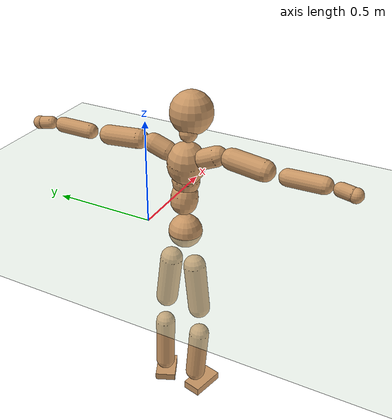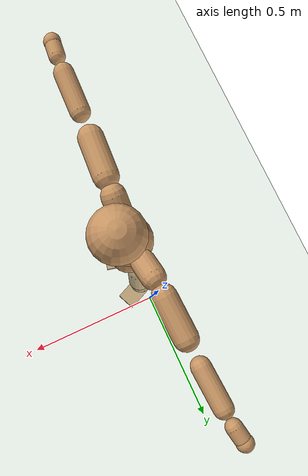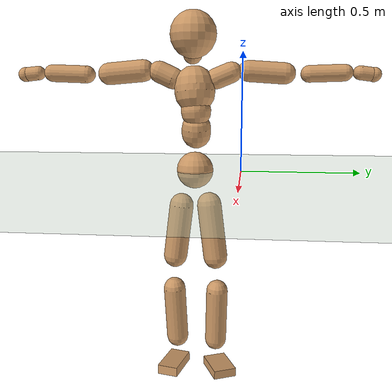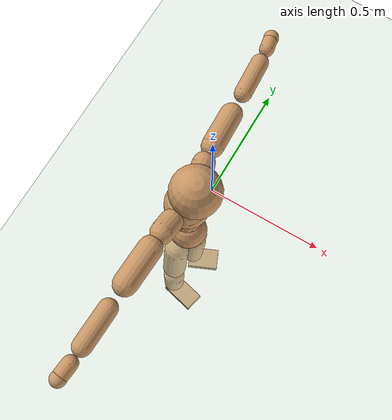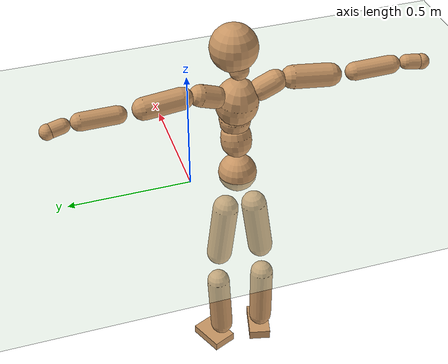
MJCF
<mujoco model="humanoid">
  <compiler coordinate="local" angle="radian"/>
  <default>
    <joint damping="0.0" armature="0.01" stiffness="0.0" limited="true"/>
    <geom conaffinity="1" condim="3" contype="7" margin="0.001" rgba="0.8 0.6 .4 1"/>
  </default>
  <asset>
    <texture type="skybox" builtin="gradient" rgb1=".4 .5 .6" rgb2="0 0 0" width="100" height="100"/>
    <texture builtin="flat" height="1278" mark="cross" markrgb="1 1 1" name="texgeom" random="0.01" rgb1="0.8 0.6 0.4" rgb2="0.8 0.6 0.4" type="cube" width="127"/>
    <texture builtin="checker" height="100" name="texplane" rgb1="0 0 0" rgb2="0.8 0.8 0.8" type="2d" width="100"/>
    <material name="MatPlane" reflectance="0.5" shininess="1" specular="1" texrepeat="60 60" texture="texplane"/>
    <material name="geom" texture="texgeom" texuniform="true"/>
  </asset>
  <worldbody>
    <light cutoff="100" diffuse="1 1 1" dir="-0 0 -1.3" directional="true" exponent="1" pos="0 0 1.3" specular=".1 .1 .1"/>
    <geom conaffinity="1" condim="3" name="floor" pos="0 0 0" rgba="0.8 0.9 0.8 1" size="100 100 .2" type="plane" material="MatPlane"/>
    <body name="Pelvis" pos="0.0015 -0.1999 0.0038">
      <freejoint name="Pelvis"/>
      <geom type="sphere" contype="1" conaffinity="1" density="500" size="0.0791" pos="0.0000 0.0000 0.0000" name="Pelvis"/>
      <body name="L_Hip" pos="-0.0273 0.0502 -0.0755">
        <joint name="L_Hip_x" type="hinge" pos="0 0 0" axis="1 0 0" stiffness="800" damping="80" armature="0.02" range="-180.0000 180.0000"/>
        <joint name="L_Hip_y" type="hinge" pos="0 0 0" axis="0 1 0" stiffness="800" damping="80" armature="0.02" range="-180.0000 180.0000"/>
        <joint name="L_Hip_z" type="hinge" pos="0 0 0" axis="0 0 1" stiffness="800" damping="80" armature="0.02" range="-180.0000 180.0000"/>
        <geom type="capsule" contype="1" conaffinity="1" density="500" fromto="0.0008 0.0099 -0.0807 0.0034 0.0397 -0.3228" size="0.0533" name="L_Hip"/>
        <body name="L_Knee" pos="0.0042 0.0497 -0.4035">
          <joint name="L_Knee_x" type="hinge" pos="0 0 0" axis="1 0 0" stiffness="800" damping="80" armature="0.02" range="-180.0000 180.0000"/>
          <joint name="L_Knee_y" type="hinge" pos="0 0 0" axis="0 1 0" stiffness="800" damping="80" armature="0.02" range="-180.0000 180.0000"/>
          <joint name="L_Knee_z" type="hinge" pos="0 0 0" axis="0 0 1" stiffness="800" damping="80" armature="0.02" range="-180.0000 180.0000"/>
          <geom type="capsule" contype="1" conaffinity="1" density="500" fromto="-0.0065 -0.0021 -0.0830 -0.0260 -0.0085 -0.3319" size="0.0484" name="L_Knee"/>
          <body name="L_Ankle" pos="-0.0325 -0.0106 -0.4149">
            <joint name="L_Ankle_x" type="hinge" pos="0 0 0" axis="1 0 0" stiffness="800" damping="80" armature="0.02" range="-180.0000 180.0000"/>
            <joint name="L_Ankle_y" type="hinge" pos="0 0 0" axis="0 1 0" stiffness="800" damping="80" armature="0.02" range="-180.0000 180.0000"/>
            <joint name="L_Ankle_z" type="hinge" pos="0 0 0" axis="0 0 1" stiffness="800" damping="80" armature="0.02" range="-180.0000 180.0000"/>
            <geom type="box" contype="1" conaffinity="1" density="500" pos="0.0558 0.0244 -0.0291" size="0.0768 0.0515 0.019" quat="0.9789 0.0000 0.0000 0.2045" name="L_Ankle"/>
            <body name="L_Toe" pos="0.1115 0.0487 -0.0581">
              <joint name="L_Toe_x" type="hinge" pos="0 0 0" axis="1 0 0" stiffness="500" damping="50" armature="0.02" range="-180.0000 180.0000"/>
              <joint name="L_Toe_y" type="hinge" pos="0 0 0" axis="0 1 0" stiffness="500" damping="50" armature="0.02" range="-180.0000 180.0000"/>
              <joint name="L_Toe_z" type="hinge" pos="0 0 0" axis="0 0 1" stiffness="500" damping="50" armature="0.02" range="-180.0000 180.0000"/>
              <geom type="box" contype="1" conaffinity="1" density="500" pos="0.0000 0.0000 0.0314" size="0.001 0.0024 0.0011" quat="0.9780 0.0000 0.0000 0.2085" name="L_Toe"/>
            </body>
          </body>
        </body>
      </body>
      <body name="R_Hip" pos="-0.025 -0.0532 -0.0832">
        <joint name="R_Hip_x" type="hinge" pos="0 0 0" axis="1 0 0" stiffness="800" damping="80" armature="0.02" range="-180.0000 180.0000"/>
        <joint name="R_Hip_y" type="hinge" pos="0 0 0" axis="0 1 0" stiffness="800" damping="80" armature="0.02" range="-180.0000 180.0000"/>
        <joint name="R_Hip_z" type="hinge" pos="0 0 0" axis="0 0 1" stiffness="800" damping="80" armature="0.02" range="-180.0000 180.0000"/>
        <geom type="capsule" contype="1" conaffinity="1" density="500" fromto="-0.0014 -0.0100 -0.0789 -0.0056 -0.0398 -0.3156" size="0.0527" name="R_Hip"/>
        <body name="R_Knee" pos="-0.007 -0.0498 -0.3945">
          <joint name="R_Knee_x" type="hinge" pos="0 0 0" axis="1 0 0" stiffness="800" damping="80" armature="0.02" range="-180.0000 180.0000"/>
          <joint name="R_Knee_y" type="hinge" pos="0 0 0" axis="0 1 0" stiffness="800" damping="80" armature="0.02" range="-180.0000 180.0000"/>
          <joint name="R_Knee_z" type="hinge" pos="0 0 0" axis="0 0 1" stiffness="800" damping="80" armature="0.02" range="-180.0000 180.0000"/>
          <geom type="capsule" contype="1" conaffinity="1" density="500" fromto="-0.0059 0.0033 -0.0818 -0.0234 0.0133 -0.3270" size="0.0494" name="R_Knee"/>
          <body name="R_Ankle" pos="-0.0293 0.0166 -0.4088">
            <joint name="R_Ankle_x" type="hinge" pos="0 0 0" axis="1 0 0" stiffness="800" damping="80" armature="0.02" range="-180.0000 180.0000"/>
            <joint name="R_Ankle_y" type="hinge" pos="0 0 0" axis="0 1 0" stiffness="800" damping="80" armature="0.02" range="-180.0000 180.0000"/>
            <joint name="R_Ankle_z" type="hinge" pos="0 0 0" axis="0 0 1" stiffness="800" damping="80" armature="0.02" range="-180.0000 180.0000"/>
            <geom type="box" contype="1" conaffinity="1" density="500" pos="0.0598 -0.0140 -0.0319" size="0.084 0.0464 0.0211" quat="0.9934 0.0000 0.0000 -0.1150" name="R_Ankle"/>
            <body name="R_Toe" pos="0.1197 -0.0281 -0.0638">
              <joint name="R_Toe_x" type="hinge" pos="0 0 0" axis="1 0 0" stiffness="500" damping="50" armature="0.02" range="-180.0000 180.0000"/>
              <joint name="R_Toe_y" type="hinge" pos="0 0 0" axis="0 1 0" stiffness="500" damping="50" armature="0.02" range="-180.0000 180.0000"/>
              <joint name="R_Toe_z" type="hinge" pos="0 0 0" axis="0 0 1" stiffness="500" damping="50" armature="0.02" range="-180.0000 180.0000"/>
              <geom type="box" contype="1" conaffinity="1" density="500" pos="0.0000 0.0000 0.0340" size="0.0009 0.0022 0.0012" quat="0.9944 0.0000 0.0000 -0.1054" name="R_Toe"/>
            </body>
          </body>
        </body>
      </body>
      <body name="Torso" pos="-0.0165 0.0043 0.1082">
        <joint name="Torso_x" type="hinge" pos="0 0 0" axis="1 0 0" stiffness="1000" damping="100" armature="0.02" range="-180.0000 180.0000"/>
        <joint name="Torso_y" type="hinge" pos="0 0 0" axis="0 1 0" stiffness="1000" damping="100" armature="0.02" range="-180.0000 180.0000"/>
        <joint name="Torso_z" type="hinge" pos="0 0 0" axis="0 0 1" stiffness="1000" damping="100" armature="0.02" range="-180.0000 180.0000"/>
        <geom type="capsule" contype="1" conaffinity="1" density="500" fromto="0.0184 0.0016 0.0731 0.0123 0.0010 0.0487" size="0.0625" name="Torso"/>
        <body name="Spine" pos="0.0307 0.0026 0.1218">
          <joint name="Spine_x" type="hinge" pos="0 0 0" axis="1 0 0" stiffness="1000" damping="100" armature="0.02" range="-180.0000 180.0000"/>
          <joint name="Spine_y" type="hinge" pos="0 0 0" axis="0 1 0" stiffness="1000" damping="100" armature="0.02" range="-180.0000 180.0000"/>
          <joint name="Spine_z" type="hinge" pos="0 0 0" axis="0 0 1" stiffness="1000" damping="100" armature="0.02" range="-180.0000 180.0000"/>
          <geom type="capsule" contype="1" conaffinity="1" density="500" fromto="-0.0001 -0.0016 0.0289 -0.0001 -0.0010 0.0192" size="0.0635" name="Spine"/>
          <body name="Chest" pos="-0.0002 -0.0026 0.0481">
            <joint name="Chest_x" type="hinge" pos="0 0 0" axis="1 0 0" stiffness="1000" damping="100" armature="0.02" range="-180.0000 180.0000"/>
            <joint name="Chest_y" type="hinge" pos="0 0 0" axis="0 1 0" stiffness="1000" damping="100" armature="0.02" range="-180.0000 180.0000"/>
            <joint name="Chest_z" type="hinge" pos="0 0 0" axis="0 0 1" stiffness="1000" damping="100" armature="0.02" range="-180.0000 180.0000"/>
            <geom type="capsule" contype="1" conaffinity="1" density="500" fromto="-0.0100 -0.0056 0.0775 -0.0066 -0.0038 0.0517" size="0.0858" name="Chest"/>
            <body name="Neck" pos="-0.017 -0.0144 0.1872">
              <joint name="Neck_x" type="hinge" pos="0 0 0" axis="1 0 0" stiffness="500" damping="50" armature="0.02" range="-180.0000 180.0000"/>
              <joint name="Neck_y" type="hinge" pos="0 0 0" axis="0 1 0" stiffness="500" damping="50" armature="0.02" range="-180.0000 180.0000"/>
              <joint name="Neck_z" type="hinge" pos="0 0 0" axis="0 0 1" stiffness="500" damping="50" armature="0.02" range="-180.0000 180.0000"/>
              <geom type="capsule" contype="1" conaffinity="1" density="500" fromto="0.0101 0.0017 0.0191 0.0406 0.0068 0.0764" size="0.0401" name="Neck"/>
              <body name="Head" pos="0.0507 0.0084 0.0955">
                <joint name="Head_x" type="hinge" pos="0 0 0" axis="1 0 0" stiffness="500" damping="50" armature="0.02" range="-180.0000 180.0000"/>
                <joint name="Head_y" type="hinge" pos="0 0 0" axis="0 1 0" stiffness="500" damping="50" armature="0.02" range="-180.0000 180.0000"/>
                <joint name="Head_z" type="hinge" pos="0 0 0" axis="0 0 1" stiffness="500" damping="50" armature="0.02" range="-180.0000 180.0000"/>
                <geom type="sphere" contype="1" conaffinity="1" density="500" size="0.0961" pos="0.0000 0.0000 0.0000" name="Head"/>
              </body>
            </body>
            <body name="L_Thorax" pos="-0.0155 0.0627 0.0993">
              <joint name="L_Thorax_x" type="hinge" pos="0 0 0" axis="1 0 0" stiffness="500" damping="50" armature="0.02" range="-180.0000 180.0000"/>
              <joint name="L_Thorax_y" type="hinge" pos="0 0 0" axis="0 1 0" stiffness="500" damping="50" armature="0.02" range="-180.0000 180.0000"/>
              <joint name="L_Thorax_z" type="hinge" pos="0 0 0" axis="0 0 1" stiffness="500" damping="50" armature="0.02" range="-180.0000 180.0000"/>
              <geom type="capsule" contype="1" conaffinity="1" density="500" fromto="-0.0025 0.0212 0.0087 -0.0098 0.0850 0.0350" size="0.0438" name="L_Thorax"/>
              <body name="L_Shoulder" pos="-0.0123 0.1062 0.0437">
                <joint name="L_Shoulder_x" type="hinge" pos="0 0 0" axis="1 0 0" stiffness="500" damping="50" armature="0.02" range="-720.0000 720.0000"/>
                <joint name="L_Shoulder_y" type="hinge" pos="0 0 0" axis="0 1 0" stiffness="500" damping="50" armature="0.02" range="-720.0000 720.0000"/>
                <joint name="L_Shoulder_z" type="hinge" pos="0 0 0" axis="0 0 1" stiffness="500" damping="50" armature="0.02" range="-720.0000 720.0000"/>
                <geom type="capsule" contype="1" conaffinity="1" density="500" fromto="-0.0023 0.0504 -0.0034 -0.0092 0.2016 -0.0137" size="0.0443" name="L_Shoulder"/>
                <body name="L_Elbow" pos="-0.0115 0.252 -0.0171">
                  <joint name="L_Elbow_x" type="hinge" pos="0 0 0" axis="1 0 0" stiffness="500" damping="50" armature="0.02" range="-720.0000 720.0000"/>
                  <joint name="L_Elbow_y" type="hinge" pos="0 0 0" axis="0 1 0" stiffness="500" damping="50" armature="0.02" range="-720.0000 720.0000"/>
                  <joint name="L_Elbow_z" type="hinge" pos="0 0 0" axis="0 0 1" stiffness="500" damping="50" armature="0.02" range="-720.0000 720.0000"/>
                  <geom type="capsule" contype="1" conaffinity="1" density="500" fromto="-0.0025 0.0485 0.0015 -0.0101 0.1938 0.0059" size="0.035" name="L_Elbow"/>
                  <body name="L_Wrist" pos="-0.0126 0.2423 0.0074">
                    <joint name="L_Wrist_x" type="hinge" pos="0 0 0" axis="1 0 0" stiffness="300" damping="30" armature="0.02" range="-180.0000 180.0000"/>
                    <joint name="L_Wrist_y" type="hinge" pos="0 0 0" axis="0 1 0" stiffness="300" damping="30" armature="0.02" range="-180.0000 180.0000"/>
                    <joint name="L_Wrist_z" type="hinge" pos="0 0 0" axis="0 0 1" stiffness="300" damping="30" armature="0.02" range="-180.0000 180.0000"/>
                    <geom type="capsule" contype="1" conaffinity="1" density="500" fromto="-0.0027 0.0148 -0.0018 -0.0109 0.0593 -0.0072" size="0.0289" name="L_Wrist"/>
                    <body name="L_Hand" pos="-0.0136 0.0741 -0.009">
                      <joint name="L_Hand_x" type="hinge" pos="0 0 0" axis="1 0 0" stiffness="300" damping="30" armature="0.02" range="-180.0000 180.0000"/>
                      <joint name="L_Hand_y" type="hinge" pos="0 0 0" axis="0 1 0" stiffness="300" damping="30" armature="0.02" range="-180.0000 180.0000"/>
                      <joint name="L_Hand_z" type="hinge" pos="0 0 0" axis="0 0 1" stiffness="300" damping="30" armature="0.02" range="-180.0000 180.0000"/>
                      <geom type="sphere" contype="1" conaffinity="1" density="500" size="0.0304" pos="0.0000 0.0000 0.0000" name="L_Hand"/>
                    </body>
                  </body>
                </body>
              </body>
            </body>
            <body name="R_Thorax" pos="-0.0174 -0.0764 0.1009">
              <joint name="R_Thorax_x" type="hinge" pos="0 0 0" axis="1 0 0" stiffness="500" damping="50" armature="0.02" range="-180.0000 180.0000"/>
              <joint name="R_Thorax_y" type="hinge" pos="0 0 0" axis="0 1 0" stiffness="500" damping="50" armature="0.02" range="-180.0000 180.0000"/>
              <joint name="R_Thorax_z" type="hinge" pos="0 0 0" axis="0 0 1" stiffness="500" damping="50" armature="0.02" range="-180.0000 180.0000"/>
              <geom type="capsule" contype="1" conaffinity="1" density="500" fromto="-0.0006 -0.0199 0.0092 -0.0023 -0.0796 0.0367" size="0.045" name="R_Thorax"/>
              <body name="R_Shoulder" pos="-0.0029 -0.0994 0.0459">
                <joint name="R_Shoulder_x" type="hinge" pos="0 0 0" axis="1 0 0" stiffness="500" damping="50" armature="0.02" range="-720.0000 720.0000"/>
                <joint name="R_Shoulder_y" type="hinge" pos="0 0 0" axis="0 1 0" stiffness="500" damping="50" armature="0.02" range="-720.0000 720.0000"/>
                <joint name="R_Shoulder_z" type="hinge" pos="0 0 0" axis="0 0 1" stiffness="500" damping="50" armature="0.02" range="-720.0000 720.0000"/>
                <geom type="capsule" contype="1" conaffinity="1" density="500" fromto="-0.0035 -0.0501 -0.0041 -0.0141 -0.2005 -0.0164" size="0.0468" name="R_Shoulder"/>
                <body name="R_Elbow" pos="-0.0176 -0.2507 -0.0205">
                  <joint name="R_Elbow_x" type="hinge" pos="0 0 0" axis="1 0 0" stiffness="500" damping="50" armature="0.02" range="-720.0000 720.0000"/>
                  <joint name="R_Elbow_y" type="hinge" pos="0 0 0" axis="0 1 0" stiffness="500" damping="50" armature="0.02" range="-720.0000 720.0000"/>
                  <joint name="R_Elbow_z" type="hinge" pos="0 0 0" axis="0 0 1" stiffness="500" damping="50" armature="0.02" range="-720.0000 720.0000"/>
                  <geom type="capsule" contype="1" conaffinity="1" density="500" fromto="-0.0017 -0.0510 0.0020 -0.0070 -0.2041 0.0081" size="0.0369" name="R_Elbow"/>
                  <body name="R_Wrist" pos="-0.0087 -0.2551 0.0101">
                    <joint name="R_Wrist_x" type="hinge" pos="0 0 0" axis="1 0 0" stiffness="300" damping="30" armature="0.02" range="-180.0000 180.0000"/>
                    <joint name="R_Wrist_y" type="hinge" pos="0 0 0" axis="0 1 0" stiffness="300" damping="30" armature="0.02" range="-180.0000 180.0000"/>
                    <joint name="R_Wrist_z" type="hinge" pos="0 0 0" axis="0 0 1" stiffness="300" damping="30" armature="0.02" range="-180.0000 180.0000"/>
                    <geom type="capsule" contype="1" conaffinity="1" density="500" fromto="-0.0018 -0.0155 -0.0014 -0.0072 -0.0619 -0.0057" size="0.0301" name="R_Wrist"/>
                    <body name="R_Hand" pos="-0.009 -0.0774 -0.0072">
                      <joint name="R_Hand_x" type="hinge" pos="0 0 0" axis="1 0 0" stiffness="300" damping="30" armature="0.02" range="-180.0000 180.0000"/>
                      <joint name="R_Hand_y" type="hinge" pos="0 0 0" axis="0 1 0" stiffness="300" damping="30" armature="0.02" range="-180.0000 180.0000"/>
                      <joint name="R_Hand_z" type="hinge" pos="0 0 0" axis="0 0 1" stiffness="300" damping="30" armature="0.02" range="-180.0000 180.0000"/>
                      <geom type="sphere" contype="1" conaffinity="1" density="500" size="0.0315" pos="0.0000 0.0000 0.0000" name="R_Hand"/>
                    </body>
                  </body>
                </body>
              </body>
            </body>
          </body>
        </body>
      </body>
    </body>
  </worldbody>
  <actuator>
    <motor name="L_Hip_x" joint="L_Hip_x" gear="500"/>
    <motor name="L_Hip_y" joint="L_Hip_y" gear="500"/>
    <motor name="L_Hip_z" joint="L_Hip_z" gear="500"/>
    <motor name="L_Knee_x" joint="L_Knee_x" gear="500"/>
    <motor name="L_Knee_y" joint="L_Knee_y" gear="500"/>
    <motor name="L_Knee_z" joint="L_Knee_z" gear="500"/>
    <motor name="L_Ankle_x" joint="L_Ankle_x" gear="500"/>
    <motor name="L_Ankle_y" joint="L_Ankle_y" gear="500"/>
    <motor name="L_Ankle_z" joint="L_Ankle_z" gear="500"/>
    <motor name="L_Toe_x" joint="L_Toe_x" gear="500"/>
    <motor name="L_Toe_y" joint="L_Toe_y" gear="500"/>
    <motor name="L_Toe_z" joint="L_Toe_z" gear="500"/>
    <motor name="R_Hip_x" joint="R_Hip_x" gear="500"/>
    <motor name="R_Hip_y" joint="R_Hip_y" gear="500"/>
    <motor name="R_Hip_z" joint="R_Hip_z" gear="500"/>
    <motor name="R_Knee_x" joint="R_Knee_x" gear="500"/>
    <motor name="R_Knee_y" joint="R_Knee_y" gear="500"/>
    <motor name="R_Knee_z" joint="R_Knee_z" gear="500"/>
    <motor name="R_Ankle_x" joint="R_Ankle_x" gear="500"/>
    <motor name="R_Ankle_y" joint="R_Ankle_y" gear="500"/>
    <motor name="R_Ankle_z" joint="R_Ankle_z" gear="500"/>
    <motor name="R_Toe_x" joint="R_Toe_x" gear="500"/>
    <motor name="R_Toe_y" joint="R_Toe_y" gear="500"/>
    <motor name="R_Toe_z" joint="R_Toe_z" gear="500"/>
    <motor name="Torso_x" joint="Torso_x" gear="500"/>
    <motor name="Torso_y" joint="Torso_y" gear="500"/>
    <motor name="Torso_z" joint="Torso_z" gear="500"/>
    <motor name="Spine_x" joint="Spine_x" gear="500"/>
    <motor name="Spine_y" joint="Spine_y" gear="500"/>
    <motor name="Spine_z" joint="Spine_z" gear="500"/>
    <motor name="Chest_x" joint="Chest_x" gear="500"/>
    <motor name="Chest_y" joint="Chest_y" gear="500"/>
    <motor name="Chest_z" joint="Chest_z" gear="500"/>
    <motor name="Neck_x" joint="Neck_x" gear="500"/>
    <motor name="Neck_y" joint="Neck_y" gear="500"/>
    <motor name="Neck_z" joint="Neck_z" gear="500"/>
    <motor name="Head_x" joint="Head_x" gear="500"/>
    <motor name="Head_y" joint="Head_y" gear="500"/>
    <motor name="Head_z" joint="Head_z" gear="500"/>
    <motor name="L_Thorax_x" joint="L_Thorax_x" gear="500"/>
    <motor name="L_Thorax_y" joint="L_Thorax_y" gear="500"/>
    <motor name="L_Thorax_z" joint="L_Thorax_z" gear="500"/>
    <motor name="L_Shoulder_x" joint="L_Shoulder_x" gear="500"/>
    <motor name="L_Shoulder_y" joint="L_Shoulder_y" gear="500"/>
    <motor name="L_Shoulder_z" joint="L_Shoulder_z" gear="500"/>
    <motor name="L_Elbow_x" joint="L_Elbow_x" gear="500"/>
    <motor name="L_Elbow_y" joint="L_Elbow_y" gear="500"/>
    <motor name="L_Elbow_z" joint="L_Elbow_z" gear="500"/>
    <motor name="L_Wrist_x" joint="L_Wrist_x" gear="500"/>
    <motor name="L_Wrist_y" joint="L_Wrist_y" gear="500"/>
    <motor name="L_Wrist_z" joint="L_Wrist_z" gear="500"/>
    <motor name="L_Hand_x" joint="L_Hand_x" gear="500"/>
    <motor name="L_Hand_y" joint="L_Hand_y" gear="500"/>
    <motor name="L_Hand_z" joint="L_Hand_z" gear="500"/>
    <motor name="R_Thorax_x" joint="R_Thorax_x" gear="500"/>
    <motor name="R_Thorax_y" joint="R_Thorax_y" gear="500"/>
    <motor name="R_Thorax_z" joint="R_Thorax_z" gear="500"/>
    <motor name="R_Shoulder_x" joint="R_Shoulder_x" gear="500"/>
    <motor name="R_Shoulder_y" joint="R_Shoulder_y" gear="500"/>
    <motor name="R_Shoulder_z" joint="R_Shoulder_z" gear="500"/>
    <motor name="R_Elbow_x" joint="R_Elbow_x" gear="500"/>
    <motor name="R_Elbow_y" joint="R_Elbow_y" gear="500"/>
    <motor name="R_Elbow_z" joint="R_Elbow_z" gear="500"/>
    <motor name="R_Wrist_x" joint="R_Wrist_x" gear="500"/>
    <motor name="R_Wrist_y" joint="R_Wrist_y" gear="500"/>
    <motor name="R_Wrist_z" joint="R_Wrist_z" gear="500"/>
    <motor name="R_Hand_x" joint="R_Hand_x" gear="500"/>
    <motor name="R_Hand_y" joint="R_Hand_y" gear="500"/>
    <motor name="R_Hand_z" joint="R_Hand_z" gear="500"/>
  </actuator>
  <contact>
    <exclude body1="Torso" body2="Chest"/>
    <exclude body1="Head" body2="Chest"/>
    <exclude body1="R_Knee" body2="R_Toe"/>
    <exclude body1="R_Knee" body2="L_Ankle"/>
    <exclude body1="R_Knee" body2="L_Toe"/>
    <exclude body1="L_Knee" body2="L_Toe"/>
    <exclude body1="L_Knee" body2="R_Ankle"/>
    <exclude body1="L_Knee" body2="R_Toe"/>
    <exclude body1="L_Shoulder" body2="Chest"/>
    <exclude body1="R_Shoulder" body2="Chest"/>
  </contact>
  <sensor/>
  <size njmax="700" nconmax="700"/>
</mujoco>
